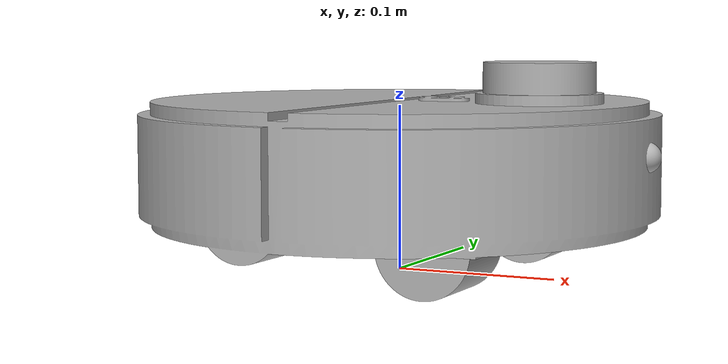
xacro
<?xml version="1.0" ?>
<robot name="robot_vacuum" xmlns:xacro="http://www.ros.org/wiki/xacro">

<xacro:include filename="$(find robot_vacuum_description)/urdf/materials.xacro" />
<xacro:include filename="$(find robot_vacuum_description)/urdf/robot_vacuum.trans" />
<xacro:include filename="$(find robot_vacuum_description)/urdf/robot_vacuum.gazebo" />
<link name="base_link">
  <inertial>
    <origin xyz="-0.00400604735627117 0.0 0.06640790783033473" rpy="0 0 0"/>
    <mass value="43.841758375387045"/>
    <inertia ixx="0.285207" iyy="0.289631" izz="0.53281" ixy="-0.0" iyz="0.0" ixz="-0.006834"/>
  </inertial>
  <visual>
    <origin xyz="0 0 0" rpy="0 0 0"/>
    <geometry>
      <mesh filename="package://robot_vacuum_description/meshes/base_link.stl" scale="0.001 0.001 0.001"/>
    </geometry>
    <material name="silver"/>
  </visual>
  <collision>
    <origin xyz="0 0 0" rpy="0 0 0"/>
    <geometry>
      <mesh filename="package://robot_vacuum_description/meshes/base_link.stl" scale="0.001 0.001 0.001"/>
    </geometry>
  </collision>
</link>

<link name="LeftWheel_1">
  <inertial>
    <origin xyz="0.0 -0.02325000000000002 0.0" rpy="0 0 0"/>
    <mass value="0.931455694966405"/>
    <inertia ixx="0.000357" iyy="0.000378" izz="0.000357" ixy="-0.0" iyz="-0.0" ixz="0.0"/>
  </inertial>
  <visual>
    <origin xyz="-0.06 -0.1 -0.0285" rpy="0 0 0"/>
    <geometry>
      <mesh filename="package://robot_vacuum_description/meshes/LeftWheel_1.stl" scale="0.001 0.001 0.001"/>
    </geometry>
    <material name="silver"/>
  </visual>
  <collision>
    <origin xyz="-0.06 -0.1 -0.0285" rpy="0 0 0"/>
    <geometry>
      <mesh filename="package://robot_vacuum_description/meshes/LeftWheel_1.stl" scale="0.001 0.001 0.001"/>
    </geometry>
  </collision>
</link>

<link name="RightWheel_1">
  <inertial>
    <origin xyz="1.3877787807814457e-17 0.023249999999999993 -3.469446951953614e-18" rpy="0 0 0"/>
    <mass value="0.9314556949664043"/>
    <inertia ixx="0.000357" iyy="0.000378" izz="0.000357" ixy="-0.0" iyz="0.0" ixz="0.0"/>
  </inertial>
  <visual>
    <origin xyz="-0.06 0.1 -0.0285" rpy="0 0 0"/>
    <geometry>
      <mesh filename="package://robot_vacuum_description/meshes/RightWheel_1.stl" scale="0.001 0.001 0.001"/>
    </geometry>
    <material name="silver"/>
  </visual>
  <collision>
    <origin xyz="-0.06 0.1 -0.0285" rpy="0 0 0"/>
    <geometry>
      <mesh filename="package://robot_vacuum_description/meshes/RightWheel_1.stl" scale="0.001 0.001 0.001"/>
    </geometry>
  </collision>
</link>

<link name="Lidar_1">
  <inertial>
    <origin xyz="0.0 4.615300017314898e-18 0.008999999999999994" rpy="0 0 0"/>
    <mass value="0.48341476868598726"/>
    <inertia ixx="0.000145" iyy="0.000145" izz="0.000263" ixy="0.0" iyz="0.0" ixz="0.0"/>
  </inertial>
  <visual>
    <origin xyz="-0.09 -0.0 -0.1095" rpy="0 0 0"/>
    <geometry>
      <mesh filename="package://robot_vacuum_description/meshes/Lidar_1.stl" scale="0.001 0.001 0.001"/>
    </geometry>
    <material name="silver"/>
  </visual>
  <collision>
    <origin xyz="-0.09 -0.0 -0.1095" rpy="0 0 0"/>
    <geometry>
      <mesh filename="package://robot_vacuum_description/meshes/Lidar_1.stl" scale="0.001 0.001 0.001"/>
    </geometry>
  </collision>
</link>

<link name="Camera_1">
  <inertial>
    <origin xyz="-4.066178605979798e-05 1.2954973832761082e-17 0.008000000000000007" rpy="0 0 0"/>
    <mass value="0.013454679038050983"/>
    <inertia ixx="0.0" iyy="0.0" izz="0.0" ixy="-0.0" iyz="0.0" ixz="0.0"/>
  </inertial>
  <visual>
    <origin xyz="-0.1575 -0.0 -0.066" rpy="0 0 0"/>
    <geometry>
      <mesh filename="package://robot_vacuum_description/meshes/Camera_1.stl" scale="0.001 0.001 0.001"/>
    </geometry>
    <material name="silver"/>
  </visual>
  <collision>
    <origin xyz="-0.1575 -0.0 -0.066" rpy="0 0 0"/>
    <geometry>
      <mesh filename="package://robot_vacuum_description/meshes/Camera_1.stl" scale="0.001 0.001 0.001"/>
    </geometry>
  </collision>
</link>

<joint name="Revolute1" type="continuous">
  <origin xyz="0.06 0.1 0.0285" rpy="0 0 0"/>
  <parent link="base_link"/>
  <child link="LeftWheel_1"/>
  <axis xyz="0.0 1.0 0.0"/>
</joint>

<joint name="Revolute2" type="continuous">
  <origin xyz="0.06 -0.1 0.0285" rpy="0 0 0"/>
  <parent link="base_link"/>
  <child link="RightWheel_1"/>
  <axis xyz="0.0 1.0 0.0"/>
</joint>

<joint name="Rigid1" type="fixed">
  <origin xyz="0.09 0.0 0.1095" rpy="0 0 0"/>
  <parent link="base_link"/>
  <child link="Lidar_1"/>
</joint>

<joint name="Rigid2" type="fixed">
  <origin xyz="0.1575 0.0 0.066" rpy="0 0 0"/>
  <parent link="base_link"/>
  <child link="Camera_1"/>
</joint>

</robot>

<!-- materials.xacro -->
<robot name="robot_vacuum" xmlns:xacro="http://www.ros.org/wiki/xacro" >

<material name="silver">
  <color rgba="0.700 0.700 0.700 1.000"/>
</material>

</robot>

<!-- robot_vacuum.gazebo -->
<robot name="robot_vacuum" xmlns:xacro="http://www.ros.org/wiki/xacro" >

<xacro:property name="body_color" value="Gazebo/Silver" />

<gazebo>
  <plugin name="control" filename="libgazebo_ros_control.so"/>
</gazebo>
<gazebo reference="base_link">
  <material>${body_color}</material>
  <mu1>0.1</mu1>
  <mu2>0.1</mu2>
  <selfCollide>true</selfCollide>
  <gravity>true</gravity>
</gazebo>

<gazebo reference="LeftWheel_1">
  <material>${body_color}</material>
  <mu1>1500</mu1>
  <mu2>1500</mu2>
  <selfCollide>true</selfCollide>
</gazebo>

<gazebo reference="RightWheel_1">
  <material>${body_color}</material>
  <mu1>1500</mu1>
  <mu2>1500</mu2>
  <selfCollide>true</selfCollide>
</gazebo>

<gazebo reference="Lidar_1">
  <material>${body_color}</material>
  <mu1>0.2</mu1>
  <mu2>0.2</mu2>
  <selfCollide>true</selfCollide>
</gazebo>

<gazebo reference="Camera_1">
  <material>${body_color}</material>
  <mu1>0.2</mu1>
  <mu2>0.2</mu2>
  <selfCollide>true</selfCollide>
</gazebo>

<gazebo>
  <plugin name="differential_drive_controller" filename="libgazebo_ros_diff_drive.so">

    <!-- Plugin update rate in Hz -->
    <updateRate>100</updateRate>

    <!-- Name of left joint, defaults to `left_joint` -->
    <leftJoint>Revolute1</leftJoint>

    <!-- Name of right joint, defaults to `right_joint` -->
    <rightJoint>Revolute2</rightJoint>

    <!-- The distance from the center of one wheel to the other, in meters, defaults to 0.34 m -->
    <wheelSeparation>0.107</wheelSeparation>

    <!-- Diameter of the wheels, in meters, defaults to 0.15 m -->
    <wheelDiameter>0.057</wheelDiameter>

    <!-- Wheel acceleration, in rad/s^2, defaults to 0.0 rad/s^2 -->
    <wheelAcceleration>1.0</wheelAcceleration>

    <!-- Maximum torque which the wheels can produce, in Nm, defaults to 5 Nm -->
    <wheelTorque>50</wheelTorque>

    <!-- Topic to receive geometry_msgs/Twist message commands, defaults to `cmd_vel` -->
    <commandTopic>cmd_vel</commandTopic>

    <!-- Topic to publish nav_msgs/Odometry messages, defaults to `odom` -->
    <odometryTopic>odom</odometryTopic>

    <!-- Odometry frame, defaults to `odom` -->
    <odometryFrame>odom</odometryFrame>

    <!-- Robot frame to calculate odometry from, defaults to `base_footprint` -->
    <robotBaseFrame>base_link</robotBaseFrame>

    <!-- Odometry source, 0 for ENCODER, 1 for WORLD, defaults to WORLD -->
    <odometrySource>1</odometrySource>

    <!-- Set to true to publish transforms for the wheel links, defaults to false -->
    <publishWheelTF>true</publishWheelTF>

    <!-- Set to true to publish transforms for the odometry, defaults to true -->
    <publishOdom>true</publishOdom>

    <!-- Set to true to publish sensor_msgs/JointState on /joint_states for the wheel joints, defaults to false -->
    <publishWheelJointState>true</publishWheelJointState>

    <!-- Set to true to swap right and left wheels, defaults to true -->
    <legacyMode>false</legacyMode>
  </plugin>
</gazebo>

 <!-- hokuyo -->
  <gazebo reference="Lidar_1">
    <sensor type="ray" name="head_hokuyo_sensor">
      <pose>0 0 0 0 0 0</pose>
      <visualize>true</visualize>
      <update_rate>40</update_rate>
      <ray>
        <scan>
          <horizontal>
            <samples>720</samples>
            <resolution>1</resolution>
            <min_angle>-1.570796</min_angle>
            <max_angle>1.570796</max_angle>
          </horizontal>
        </scan>
        <range>
          <min>0.05</min>
          <max>30.0</max>
          <resolution>0.01</resolution>
        </range>
        <noise>
          <type>gaussian</type>
          <mean>0.0</mean>
          <stddev>0.01</stddev>
        </noise>
      </ray>
      <plugin name="gazebo_ros_head_hokuyo_controller" filename="libgazebo_ros_laser.so">
        <topicName>/scan</topicName>
        <frameName>Lidar_1</frameName>
      </plugin>
    </sensor>
  </gazebo>

<!-- camera -->
  <gazebo reference="Camera_1">
    <sensor type="camera" name="camera1">
      <update_rate>30.0</update_rate>
      <camera name="head">
        <horizontal_fov>1.3962634</horizontal_fov>
        <image>
          <width>800</width>
          <height>800</height>
          <format>R8G8B8</format>
        </image>
        <clip>
          <near>0.02</near>
          <far>300</far>
        </clip>
        <noise>
          <type>gaussian</type>
          <!-- Noise is sampled independently per pixel on each frame.
               That pixel's noise value is added to each of its color
               channels, which at that point lie in the range [0,1]. -->
          <mean>0.0</mean>
          <stddev>0.007</stddev>
        </noise>
      </camera>
      <plugin name="camera_controller" filename="libgazebo_ros_camera.so">
        <alwaysOn>true</alwaysOn>
        <updateRate>0.0</updateRate>
        <cameraName>camera1</cameraName>
        <imageTopicName>image_raw</imageTopicName>
        <cameraInfoTopicName>camera_info</cameraInfoTopicName>
        <frameName>camera_link</frameName>
        <hackBaseline>0.07</hackBaseline>
        <distortionK1>0.0</distortionK1>
        <distortionK2>0.0</distortionK2>
        <distortionK3>0.0</distortionK3>
        <distortionT1>0.0</distortionT1>
        <distortionT2>0.0</distortionT2>
      </plugin>
    </sensor>
  </gazebo>

</robot>
